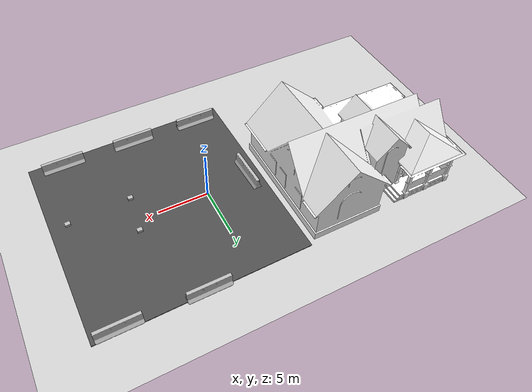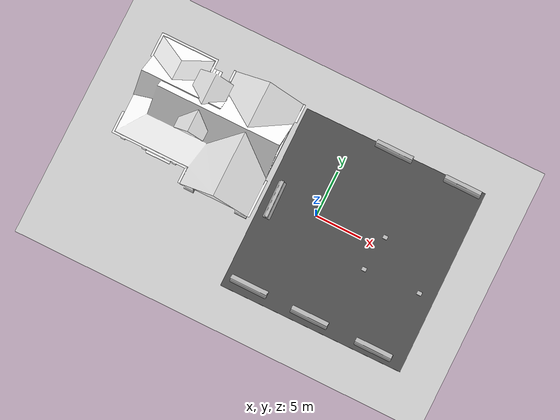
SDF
<sdf version="1.7">
 <world name="default">
  <light name="sun" type="directional">
   <pose>0 0 10 0 -0 0</pose>
   <diffuse>0.8 0.8 0.8 1</diffuse>
   <specular>0.2 0.2 0.2 1</specular>
   <attenuation>
    <range>1000</range>
    <constant>0.9</constant>
    <linear>0.01</linear>
    <quadratic>0.001</quadratic>
   </attenuation>
   <direction>-0.5 0.1 -0.9</direction>
   <spot><inner_angle>0</inner_angle><outer_angle>0</outer_angle><falloff>0</falloff></spot>
  </light>
  <model name="ground_plane">
   <static>1</static>
   <link name="link">
    <collision name="collision">
     <geometry><plane><normal>0 0 1</normal><size>100 100</size></plane></geometry>
     <surface>
      <contact><collide_bitmask>65535</collide_bitmask></contact>
      <friction><ode><mu>100</mu><mu2>50</mu2></ode></friction>
     </surface>
    </collision>
    <visual name="visual">
     <cast_shadows>0</cast_shadows>
     <geometry><plane><normal>0 0 1</normal><size>100 100</size></plane></geometry>
     <material>
      <script><uri>file://media/materials/scripts/gazebo.material</uri><name>Gazebo/Grey</name></script>
     </material>
    </visual>
   </link>
  </model>
  <gravity>0 0 -9.8</gravity>
  <magnetic_field>6e-06 2.3e-05 -4.2e-05</magnetic_field>
  <atmosphere type="adiabatic"/>
  <physics type="ode">
   <max_step_size>0.001</max_step_size>
   <real_time_factor>1</real_time_factor>
   <real_time_update_rate>1000</real_time_update_rate>
  </physics>
  <scene><ambient>0.4 0.4 0.4 1</ambient><background>0.7 0.7 0.7 1</background><shadows>1</shadows></scene>
  <spherical_coordinates>
   <surface_model>EARTH_WGS84</surface_model>
   <latitude_deg>0</latitude_deg>
   <longitude_deg>0</longitude_deg>
   <elevation>0</elevation>
   <heading_deg>0</heading_deg>
  </spherical_coordinates>
  <model name="asphalt_plane">
   <static>1</static>
   <link name="link">
    <collision name="collision"><geometry><box><size>20 20 0.1</size></box></geometry></collision>
    <visual name="visual">
     <cast_shadows>0</cast_shadows>
     <geometry><box><size>20 20 0.1</size></box></geometry>
     <material>
      <script>
       <uri>model://asphalt_plane/materials/scripts</uri>
       <uri>model://asphalt_plane/materials/textures</uri>
       <name>vrc/asphalt</name>
      </script>
     </material>
    </visual>
   </link>
   <pose>4.40716 -0.48593 0 0 -0 0.009538</pose>
  </model>
  <model name="jersey_barrier">
   <static>1</static>
   <link name="link">
    <visual name="visual">
     <geometry><mesh><uri>model://jersey_barrier/meshes/jersey_barrier.dae</uri></mesh></geometry>
    </visual>
    <collision name="upright">
     <pose>0 0 0.5715 0 -0 0</pose>
     <geometry><box><size>4.06542 0.3063 1.143</size></box></geometry>
    </collision>
    <collision name="base">
     <pose>0 0 0.032258 0 -0 0</pose>
     <geometry><box><size>4.06542 0.8107 0.064516</size></box></geometry>
    </collision>
    <collision name="base2">
     <pose>0 0 0.1 0 -0 0</pose>
     <geometry><box><size>4.06542 0.65 0.1</size></box></geometry>
    </collision>
    <collision name="base3">
     <pose>0 0 0.2 0 -0 0</pose>
     <geometry><box><size>4.06542 0.5 0.1</size></box></geometry>
    </collision>
    <collision name="left-angle">
     <pose>0 -0.224 0.2401 0.9 -0 0</pose>
     <geometry><box><size>4.06542 0.5 0.064516</size></box></geometry>
    </collision>
    <collision name="right-angle">
     <pose>0 0.224 0.2401 -0.9 0 0</pose>
     <geometry><box><size>4.06542 0.5 0.064516</size></box></geometry>
    </collision>
   </link>
   <pose>11.9305 9.23218 0 0 -0 0</pose>
  </model>
  <model name="jersey_barrier_0">
   <static>1</static>
   <link name="link">
    <visual name="visual">
     <geometry><mesh><uri>model://jersey_barrier/meshes/jersey_barrier.dae</uri></mesh></geometry>
    </visual>
    <collision name="upright">
     <pose>0 0 0.5715 0 -0 0</pose>
     <geometry><box><size>4.06542 0.3063 1.143</size></box></geometry>
    </collision>
    <collision name="base">
     <pose>0 0 0.032258 0 -0 0</pose>
     <geometry><box><size>4.06542 0.8107 0.064516</size></box></geometry>
    </collision>
    <collision name="base2">
     <pose>0 0 0.1 0 -0 0</pose>
     <geometry><box><size>4.06542 0.65 0.1</size></box></geometry>
    </collision>
    <collision name="base3">
     <pose>0 0 0.2 0 -0 0</pose>
     <geometry><box><size>4.06542 0.5 0.1</size></box></geometry>
    </collision>
    <collision name="left-angle">
     <pose>0 -0.224 0.2401 0.9 -0 0</pose>
     <geometry><box><size>4.06542 0.5 0.064516</size></box></geometry>
    </collision>
    <collision name="right-angle">
     <pose>0 0.224 0.2401 -0.9 0 0</pose>
     <geometry><box><size>4.06542 0.5 0.064516</size></box></geometry>
    </collision>
   </link>
   <pose>4.17809 9.39213 0 0 -0 0</pose>
  </model>
  <model name="jersey_barrier_1">
   <static>1</static>
   <link name="link">
    <visual name="visual">
     <geometry><mesh><uri>model://jersey_barrier/meshes/jersey_barrier.dae</uri></mesh></geometry>
    </visual>
    <collision name="upright">
     <pose>0 0 0.5715 0 -0 0</pose>
     <geometry><box><size>4.06542 0.3063 1.143</size></box></geometry>
    </collision>
    <collision name="base">
     <pose>0 0 0.032258 0 -0 0</pose>
     <geometry><box><size>4.06542 0.8107 0.064516</size></box></geometry>
    </collision>
    <collision name="base2">
     <pose>0 0 0.1 0 -0 0</pose>
     <geometry><box><size>4.06542 0.65 0.1</size></box></geometry>
    </collision>
    <collision name="base3">
     <pose>0 0 0.2 0 -0 0</pose>
     <geometry><box><size>4.06542 0.5 0.1</size></box></geometry>
    </collision>
    <collision name="left-angle">
     <pose>0 -0.224 0.2401 0.9 -0 0</pose>
     <geometry><box><size>4.06542 0.5 0.064516</size></box></geometry>
    </collision>
    <collision name="right-angle">
     <pose>0 0.224 0.2401 -0.9 0 0</pose>
     <geometry><box><size>4.06542 0.5 0.064516</size></box></geometry>
    </collision>
   </link>
   <pose>11.1324 -9.55347 0 0 -0 0</pose>
  </model>
  <model name="jersey_barrier_2">
   <static>1</static>
   <link name="link">
    <visual name="visual">
     <geometry><mesh><uri>model://jersey_barrier/meshes/jersey_barrier.dae</uri></mesh></geometry>
    </visual>
    <collision name="upright">
     <pose>0 0 0.5715 0 -0 0</pose>
     <geometry><box><size>4.06542 0.3063 1.143</size></box></geometry>
    </collision>
    <collision name="base">
     <pose>0 0 0.032258 0 -0 0</pose>
     <geometry><box><size>4.06542 0.8107 0.064516</size></box></geometry>
    </collision>
    <collision name="base2">
     <pose>0 0 0.1 0 -0 0</pose>
     <geometry><box><size>4.06542 0.65 0.1</size></box></geometry>
    </collision>
    <collision name="base3">
     <pose>0 0 0.2 0 -0 0</pose>
     <geometry><box><size>4.06542 0.5 0.1</size></box></geometry>
    </collision>
    <collision name="left-angle">
     <pose>0 -0.224 0.2401 0.9 -0 0</pose>
     <geometry><box><size>4.06542 0.5 0.064516</size></box></geometry>
    </collision>
    <collision name="right-angle">
     <pose>0 0.224 0.2401 -0.9 0 0</pose>
     <geometry><box><size>4.06542 0.5 0.064516</size></box></geometry>
    </collision>
   </link>
   <pose>3.96247 -9.50551 0 0 -0 0</pose>
  </model>
  <model name="jersey_barrier_3">
   <static>1</static>
   <link name="link">
    <visual name="visual">
     <geometry><mesh><uri>model://jersey_barrier/meshes/jersey_barrier.dae</uri></mesh></geometry>
    </visual>
    <collision name="upright">
     <pose>0 0 0.5715 0 -0 0</pose>
     <geometry><box><size>4.06542 0.3063 1.143</size></box></geometry>
    </collision>
    <collision name="base">
     <pose>0 0 0.032258 0 -0 0</pose>
     <geometry><box><size>4.06542 0.8107 0.064516</size></box></geometry>
    </collision>
    <collision name="base2">
     <pose>0 0 0.1 0 -0 0</pose>
     <geometry><box><size>4.06542 0.65 0.1</size></box></geometry>
    </collision>
    <collision name="base3">
     <pose>0 0 0.2 0 -0 0</pose>
     <geometry><box><size>4.06542 0.5 0.1</size></box></geometry>
    </collision>
    <collision name="left-angle">
     <pose>0 -0.224 0.2401 0.9 -0 0</pose>
     <geometry><box><size>4.06542 0.5 0.064516</size></box></geometry>
    </collision>
    <collision name="right-angle">
     <pose>0 0.224 0.2401 -0.9 0 0</pose>
     <geometry><box><size>4.06542 0.5 0.064516</size></box></geometry>
    </collision>
   </link>
   <pose>-2.86384 -9.41583 0 0 -0 0</pose>
  </model>
  <model name="jersey_barrier_4">
   <static>1</static>
   <link name="link">
    <visual name="visual">
     <geometry><mesh><uri>model://jersey_barrier/meshes/jersey_barrier.dae</uri></mesh></geometry>
    </visual>
    <collision name="upright">
     <pose>0 0 0.5715 0 -0 0</pose>
     <geometry><box><size>4.06542 0.3063 1.143</size></box></geometry>
    </collision>
    <collision name="base">
     <pose>0 0 0.032258 0 -0 0</pose>
     <geometry><box><size>4.06542 0.8107 0.064516</size></box></geometry>
    </collision>
    <collision name="base2">
     <pose>0 0 0.1 0 -0 0</pose>
     <geometry><box><size>4.06542 0.65 0.1</size></box></geometry>
    </collision>
    <collision name="base3">
     <pose>0 0 0.2 0 -0 0</pose>
     <geometry><box><size>4.06542 0.5 0.1</size></box></geometry>
    </collision>
    <collision name="left-angle">
     <pose>0 -0.224 0.2401 0.9 -0 0</pose>
     <geometry><box><size>4.06542 0.5 0.064516</size></box></geometry>
    </collision>
    <collision name="right-angle">
     <pose>0 0.224 0.2401 -0.9 0 0</pose>
     <geometry><box><size>4.06542 0.5 0.064516</size></box></geometry>
    </collision>
   </link>
   <pose>-4.48365 -0.443803 0 0 0 -1.54273</pose>
  </model>
  <model name="cardboard_box">
   <pose>6.72661 -2.72135 0.15 0 -0 0</pose>
   <link name="link">
    <inertial>
     <mass>2</mass>
     <inertia>
      <ixx>0.0416667</ixx>
      <ixy>0</ixy>
      <ixz>0</ixz>
      <iyy>0.0566667</iyy>
      <iyz>0</iyz>
      <izz>0.0683333</izz>
     </inertia>
    </inertial>
    <collision name="collision">
     <geometry><box><size>0.5 0.4 0.3</size></box></geometry>
     <surface>
      <friction><ode><mu>1</mu><mu2>1</mu2></ode></friction>
      <contact><ode><kp>1e+07</kp><kd>1</kd><min_depth>0.001</min_depth><max_vel>0.1</max_vel></ode></contact>
     </surface>
    </collision>
    <visual name="visual">
     <pose>0 0 -0.15 0 -0 0</pose>
     <geometry>
      <mesh><uri>model://cardboard_box/meshes/cardboard_box.dae</uri><scale>1.25932 1.00745 0.755591</scale></mesh>
     </geometry>
    </visual>
   </link>
  </model>
  <model name="cardboard_box_0">
   <pose>7.20337 1.12633 0.15 0 -0 0</pose>
   <link name="link">
    <inertial>
     <mass>2</mass>
     <inertia>
      <ixx>0.0416667</ixx>
      <ixy>0</ixy>
      <ixz>0</ixz>
      <iyy>0.0566667</iyy>
      <iyz>0</iyz>
      <izz>0.0683333</izz>
     </inertia>
    </inertial>
    <collision name="collision">
     <geometry><box><size>0.5 0.4 0.3</size></box></geometry>
     <surface>
      <friction><ode><mu>1</mu><mu2>1</mu2></ode></friction>
      <contact><ode><kp>1e+07</kp><kd>1</kd><min_depth>0.001</min_depth><max_vel>0.1</max_vel></ode></contact>
     </surface>
    </collision>
    <visual name="visual">
     <pose>0 0 -0.15 0 -0 0</pose>
     <geometry>
      <mesh><uri>model://cardboard_box/meshes/cardboard_box.dae</uri><scale>1.25932 1.00745 0.755591</scale></mesh>
     </geometry>
    </visual>
   </link>
  </model>
  <model name="cardboard_box_1">
   <pose>12.7739 -2.43058 0.15 0 -0 0</pose>
   <link name="link">
    <inertial>
     <mass>2</mass>
     <inertia>
      <ixx>0.0416667</ixx>
      <ixy>0</ixy>
      <ixz>0</ixz>
      <iyy>0.0566667</iyy>
      <iyz>0</iyz>
      <izz>0.0683333</izz>
     </inertia>
    </inertial>
    <collision name="collision">
     <geometry><box><size>0.5 0.4 0.3</size></box></geometry>
     <surface>
      <friction><ode><mu>1</mu><mu2>1</mu2></ode></friction>
      <contact><ode><kp>1e+07</kp><kd>1</kd><min_depth>0.001</min_depth><max_vel>0.1</max_vel></ode></contact>
     </surface>
    </collision>
    <visual name="visual">
     <pose>0 0 -0.15 0 -0 0</pose>
     <geometry>
      <mesh><uri>model://cardboard_box/meshes/cardboard_box.dae</uri><scale>1.25932 1.00745 0.755591</scale></mesh>
     </geometry>
    </visual>
   </link>
  </model>
  <model name="House 1">
   <static>1</static>
   <link name="link">
    <collision name="collision">
     <geometry><mesh><uri>model://house_1/meshes/house_1.dae</uri><scale>1.5 1.5 1.5</scale></mesh></geometry>
    </collision>
    <visual name="visual">
     <geometry><mesh><uri>model://house_1/meshes/house_1.dae</uri><scale>1.5 1.5 1.5</scale></mesh></geometry>
     <material>
      <script>
       <uri>model://house_1/materials/scripts</uri>
       <uri>model://house_1/materials/textures</uri>
       <name>House_1/Diffuse</name>
      </script>
      <shader type="normal_map_tangent_space"><normal_map>House_1_Normal.png</normal_map></shader>
     </material>
    </visual>
   </link>
   <pose>-13.5592 3.27323 0 0 -0 0</pose>
  </model>
 </world>
</sdf>
